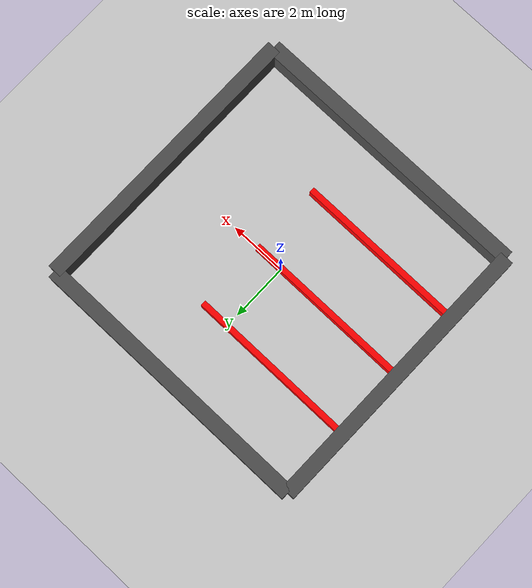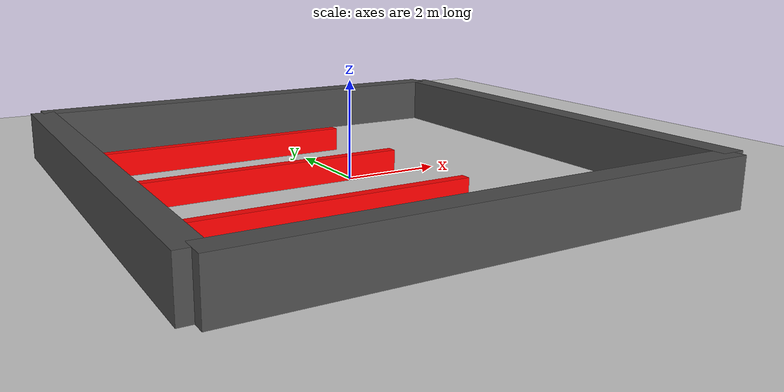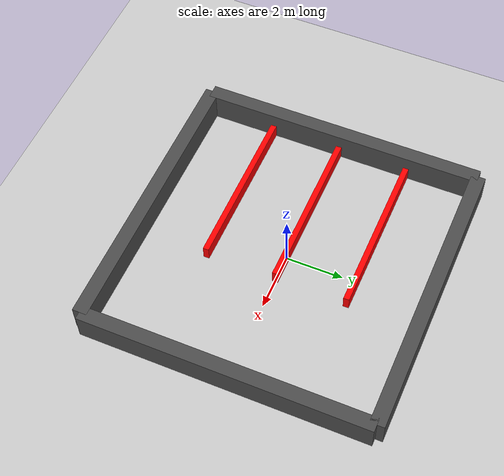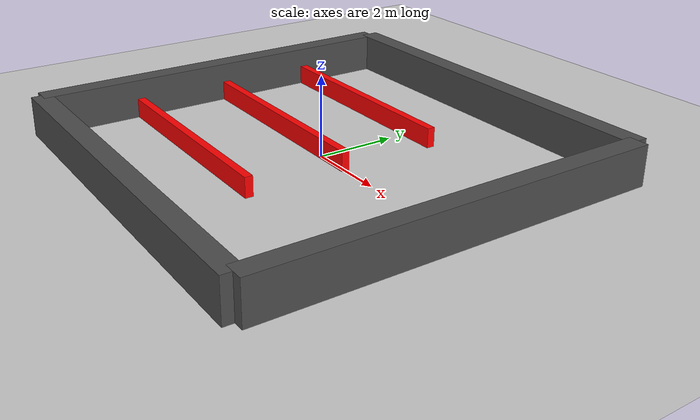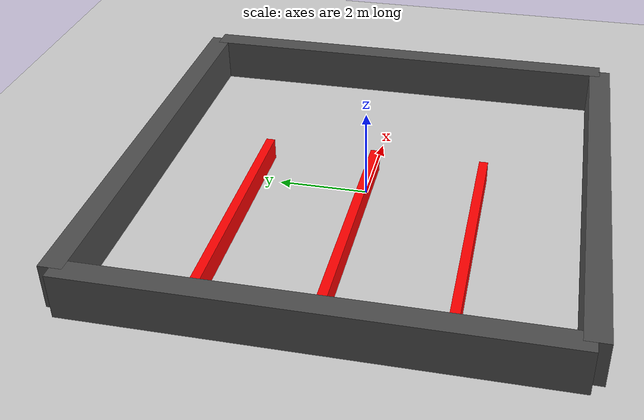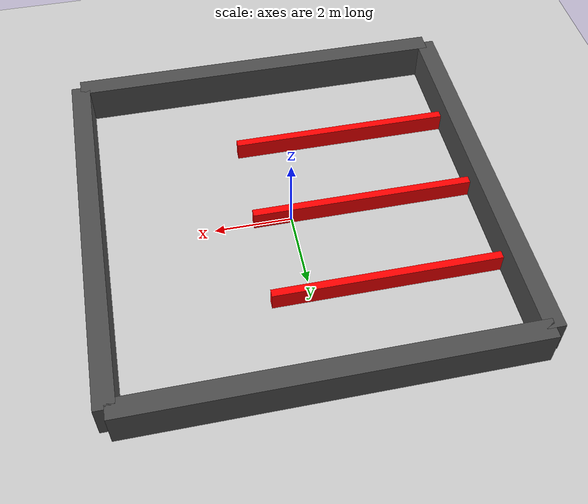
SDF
<sdf version="1.6">
  <world name="Obstacle_2">
    <physics name="1ms" type="ignored">
      <max_step_size>0.001</max_step_size>
      <real_time_factor>1.0</real_time_factor>
    </physics>
    <plugin
      filename="gz-sim-physics-system"
      name="gz::sim::systems::Physics">
    </plugin>
    <plugin
      filename="gz-sim-user-commands-system"
      name="gz::sim::systems::UserCommands">
    </plugin>
    <plugin
      filename="gz-sim-scene-broadcaster-system"
      name="gz::sim::systems::SceneBroadcaster">
    </plugin>
    <plugin
      filename="gz-sim-sensors-system"
      name="gz::sim::systems::Sensors">
      <render_engine>ogre2</render_engine>
    </plugin>
    <plugin
      filename="gz-sim-contact-system"
      name="gz::sim::systems::Contact">
    </plugin>

    <light type="directional" name="sun">
      <cast_shadows>true</cast_shadows>
      <pose>0 0 10 0 0 0</pose>
      <diffuse>0.8 0.8 0.8 1</diffuse>
      <specular>0.2 0.2 0.2 1</specular>
      <attenuation>
        <range>1000</range>
        <constant>0.9</constant>
        <linear>0.01</linear>
        <quadratic>0.001</quadratic>
      </attenuation>
      <direction>-0.5 0.1 -0.9</direction>
    </light>

    <model name="ground_plane">
      <static>true</static>
      <link name="link">
        <collision name="collision">
          <geometry>
            <plane>
              <normal>0 0 1</normal>
              <size>200 150</size>
            </plane>
          </geometry>
        </collision>
        <visual name="visual">
          <geometry>
            <plane>
              <normal>0 0 1</normal>
              <size>200 150</size>
            </plane>
          </geometry>
          <material>
            <ambient>0.8 0.8 0.8 1</ambient>
            <diffuse>0.8 0.8 0.8 1</diffuse>
            <specular>0.8 0.8 0.8 1</specular>
          </material>
        </visual>
      </link>
    </model>

    <!-- PEIGNE - 3 Dents verticales depuis le mur nord -->

    <!-- Dent 1 -->
    <model name="comb_tooth_1">
      <static>true</static>
      <link name="link">
        <pose>-2 2.5 0.25 0 0 0</pose>
        <collision name="collision">
          <geometry>
            <box>
              <size>6 0.2 0.5</size>
            </box>
          </geometry>
        </collision>
        <visual name="visual">
          <geometry>
            <box>
              <size>6 0.2 0.5</size>
            </box>
          </geometry>
          <material>
            <ambient>1 0 0 1</ambient>
          </material>
        </visual>
      </link>
    </model>

    <!-- Dent 2 -->
    <model name="comb_tooth_2">
      <static>true</static>
      <link name="link">
        <pose>-2 0 0.25 0 0 0</pose>
        <collision name="collision">
          <geometry>
            <box>
              <size>6 0.2 0.5</size>
            </box>
          </geometry>
        </collision>
        <visual name="visual">
          <geometry>
            <box>
              <size>6 0.2 0.5</size>
            </box>
          </geometry>
          <material>
            <ambient>1 0 0 1</ambient>
          </material>
        </visual>
      </link>
    </model>

    <!-- Dent 3 -->
    <model name="comb_tooth_3">
      <static>true</static>
      <link name="link">
        <pose>-2 -2.5 0.25 0 0 0</pose>
        <collision name="collision">
          <geometry>
            <box>
              <size>6 0.2 0.5</size>
            </box>
          </geometry>
        </collision>
        <visual name="visual">
          <geometry>
            <box>
              <size>6 0.2 0.5</size>
            </box>
          </geometry>
          <material>
            <ambient>1 0 0 1</ambient>
          </material>
        </visual>
      </link>
    </model>

    <!-- MUR NORD -->
    <model name="wall_north">
      <static>true</static>
      <link name="link">
        <pose>0 5 0.5 0 0 0</pose>
        <collision name="collision">
          <geometry>
            <box>
              <size>10 0.5 1</size>
            </box>
          </geometry>
        </collision>
        <visual name="visual">
          <geometry>
            <box>
              <size>10 0.5 1</size>
            </box>
          </geometry>
          <material>
            <ambient>0.3 0.3 0.3 1</ambient>
          </material>
        </visual>
      </link>
    </model>

    <!-- MUR SUD -->
    <model name="wall_south">
      <static>true</static>
      <link name="link">
        <pose>0 -5 0.5 0 0 0</pose>
        <collision name="collision">
          <geometry>
            <box>
              <size>10 0.5 1</size>
            </box>
          </geometry>
        </collision>
        <visual name="visual">
          <geometry>
            <box>
              <size>10 0.5 1</size>
            </box>
          </geometry>
          <material>
            <ambient>0.3 0.3 0.3 1</ambient>
          </material>
        </visual>
      </link>
    </model>

    <!-- MUR EST -->
    <model name="wall_east">
      <static>true</static>
      <link name="link">
        <pose>5 0 0.5 0 0 0</pose>
        <collision name="collision">
          <geometry>
            <box>
              <size>0.5 10 1</size>
            </box>
          </geometry>
        </collision>
        <visual name="visual">
          <geometry>
            <box>
              <size>0.5 10 1</size>
            </box>
          </geometry>
          <material>
            <ambient>0.3 0.3 0.3 1</ambient>
          </material>
        </visual>
      </link>
    </model>

    <!-- MUR OUEST -->
    <model name="wall_west">
      <static>true</static>
      <link name="link">
        <pose>-5 0 0.5 0 0 0</pose>
        <collision name="collision">
          <geometry>
            <box>
              <size>0.5 10 1</size>
            </box>
          </geometry>
        </collision>
        <visual name="visual">
          <geometry>
            <box>
              <size>0.5 10 1</size>
            </box>
          </geometry>
          <material>
            <ambient>0.3 0.3 0.3 1</ambient>
          </material>
        </visual>
      </link>
    </model>
  </world>
</sdf>
